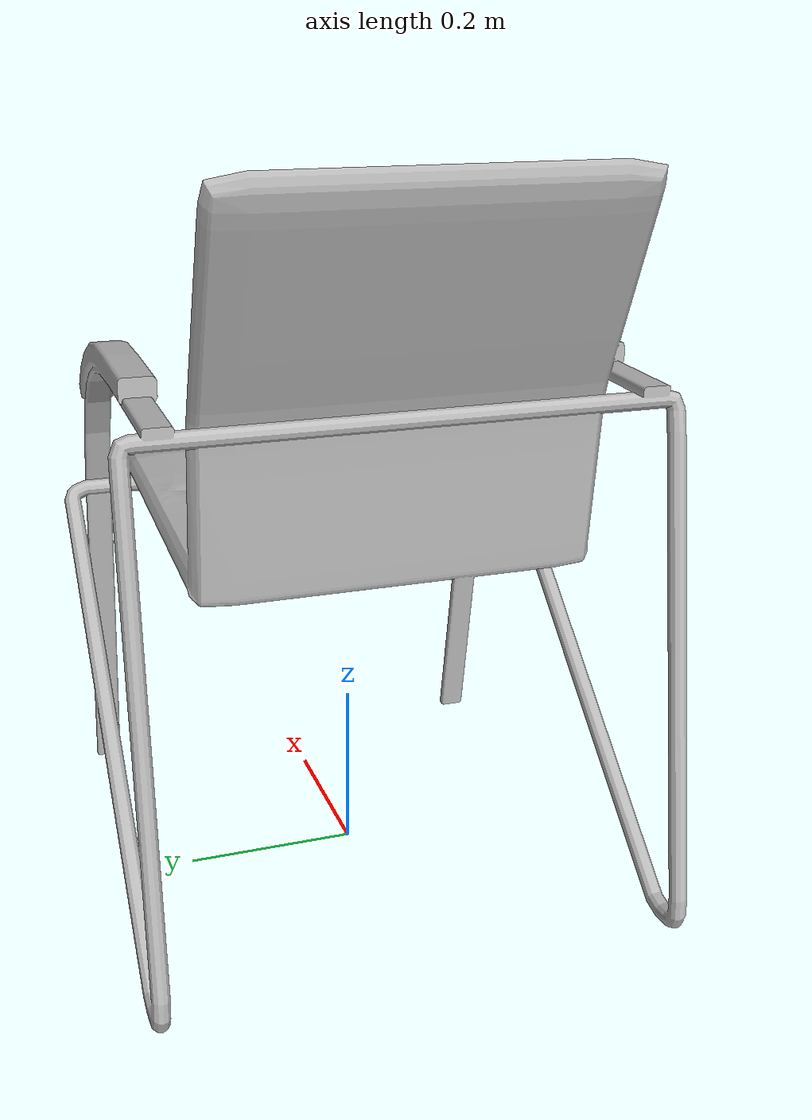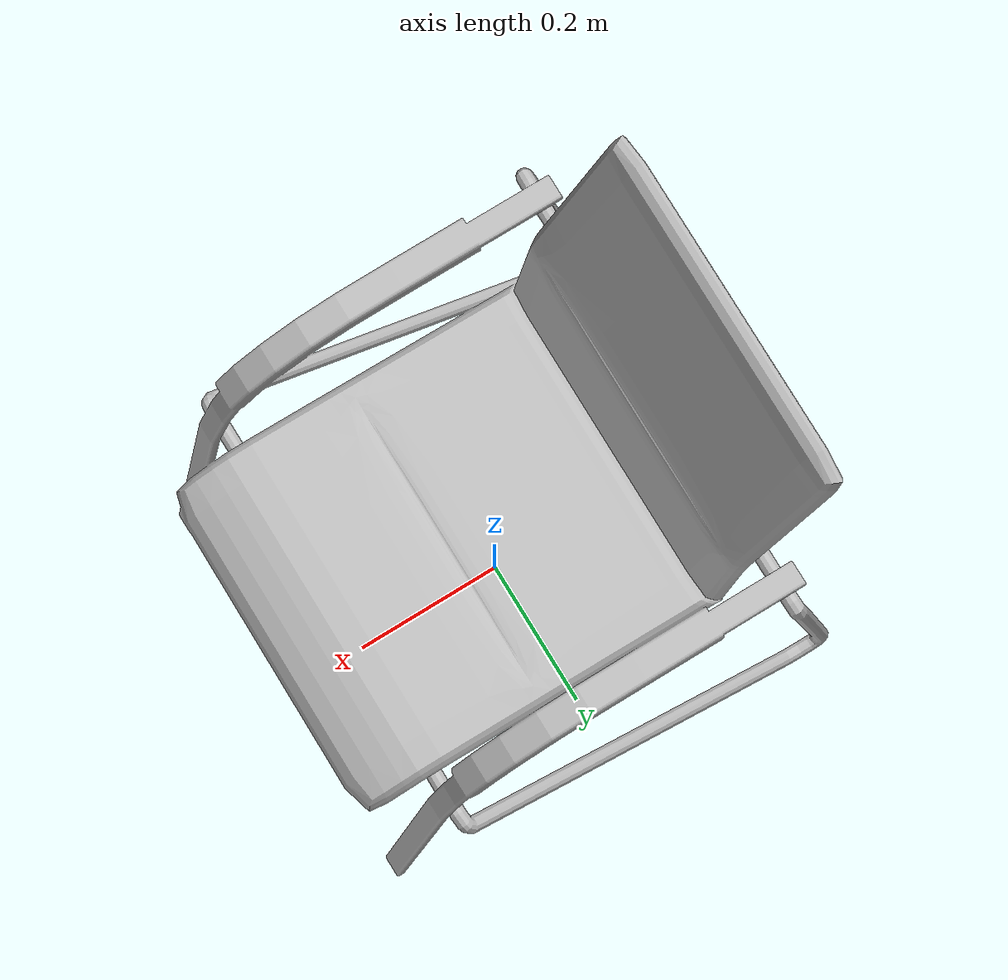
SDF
<?xml version='1.0'?>
<sdf version='1.4'>
  <model name='425'>
    <pose>0 0 0 0 0 0</pose>
    <static>true</static>
    <link name='link'>
      <collision name='collision'>
        <pose>0 0 0 0 0 0</pose>
        <geometry>
          <box>
            <size>0.632125 0.610274 2</size>
          </box>
        </geometry>
      </collision>
      <visual name='visual'>
        <pose>0 0 0 0 0 0</pose>
        <geometry>
          <mesh><uri>model://425/425.dae</uri></mesh>
        </geometry>
      </visual>
    </link>
  </model>
</sdf>
